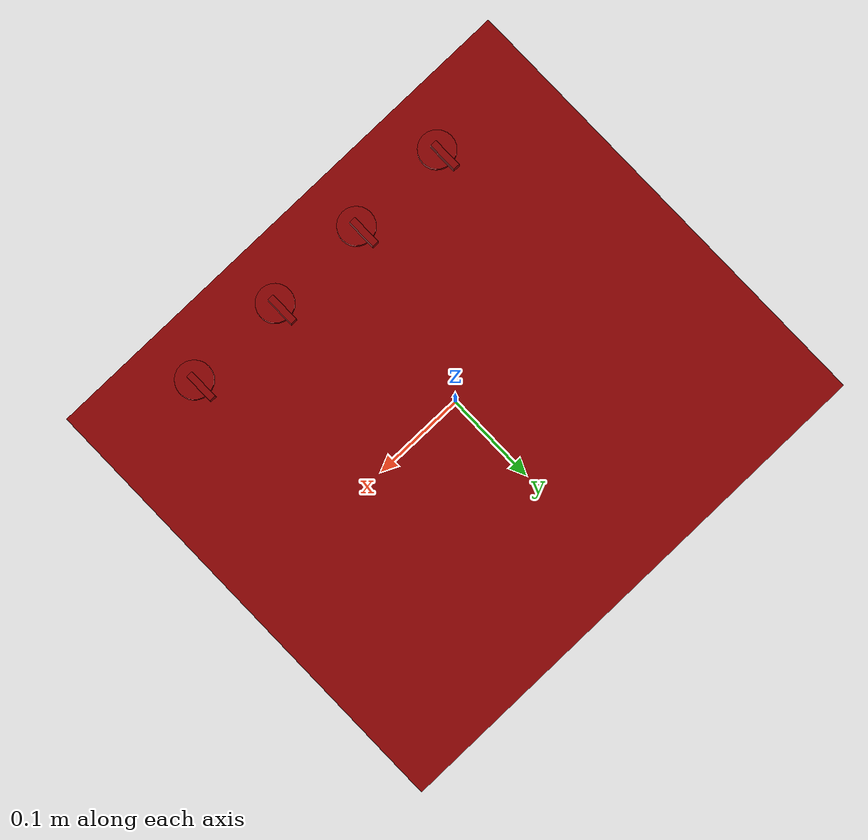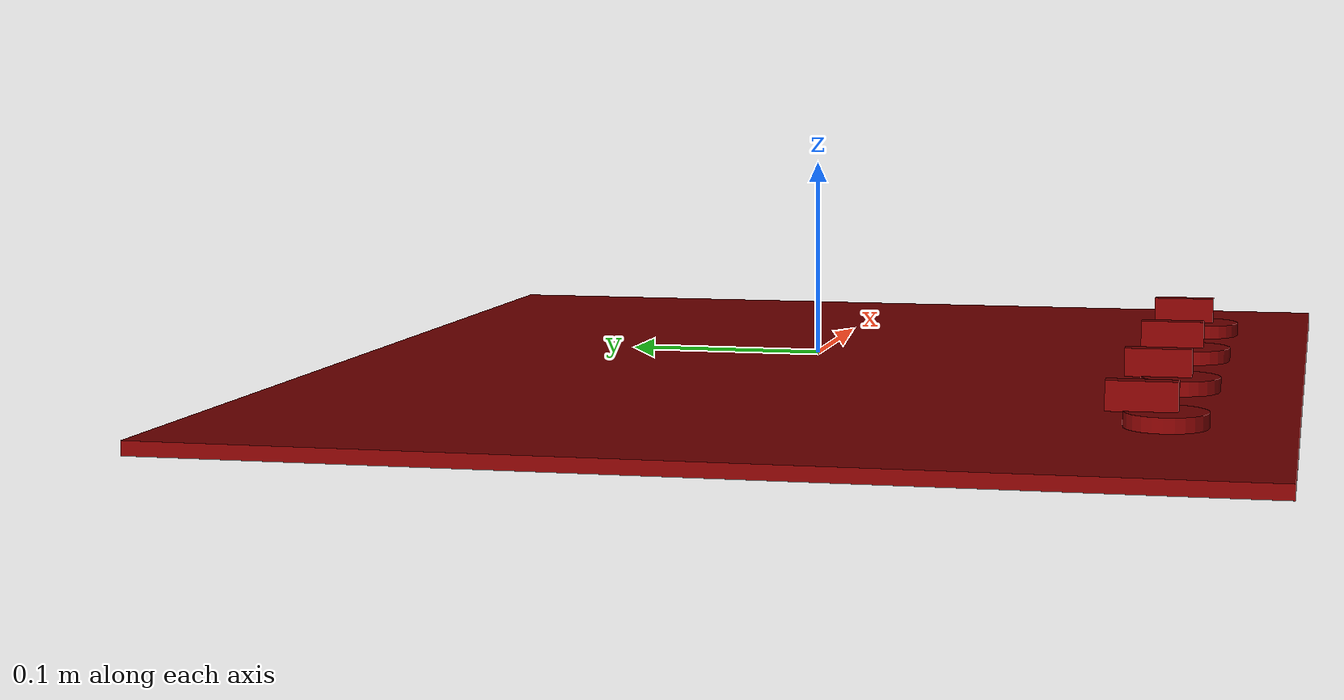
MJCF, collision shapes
<?xml version='1.0' encoding='UTF-8'?>
<mujoco model="model">
  <option timestep="0.002" gravity="0.0 0.0 -9.81"/>
  <compiler angle="radian"/>
  <asset>
    <mesh file="visuals/knob_front_left.obj" name="knob_front_left_vis"/>
    <mesh file="visuals/knob_front_right.obj" name="knob_front_right_vis"/>
    <mesh file="visuals/knob_rear_left.obj" name="knob_rear_left_vis"/>
    <mesh file="visuals/knob_rear_right.obj" name="knob_rear_right_vis"/>
    <mesh file="visuals/Body001.obj" name="Body001_vis"/>
    <texture file="visuals/T_BC001.png" name="Body001_material" type="2d"/>
    <material name="Body001_material" rgba="1 1 1 1.0" texture="Body001_material" shininess="0.4472135901451111" specular="3"/>
    <texture file="visuals/T_BC001.png" name="knob_front_left_material" type="2d"/>
    <material name="knob_front_left_material" rgba="1 1 1 1.0" texture="knob_front_left_material" shininess="0.4472135901451111" specular="0.3103448502657381"/>
    <texture file="visuals/T_BC001.png" name="knob_front_right_material" type="2d"/>
    <material name="knob_front_right_material" rgba="1 1 1 1.0" texture="knob_front_right_material" shininess="0.4472135901451111" specular="0.3103448502657381"/>
    <texture file="visuals/T_BC001.png" name="knob_rear_left_material" type="2d"/>
    <material name="knob_rear_left_material" rgba="1 1 1 1.0" texture="knob_rear_left_material" shininess="0.4472135901451111" specular="0.3103448502657381"/>
    <texture file="visuals/T_BC001.png" name="knob_rear_right_material" type="2d"/>
    <material name="knob_rear_right_material" rgba="1 1 1 1.0" texture="knob_rear_right_material" shininess="0.4472135901451111" specular="0.3103448502657381"/>
  </asset>
  <default>
    <default class="visual">
      <geom conaffinity="0" contype="0" group="1" type="mesh"/>
    </default>
    <default class="collision">
      <geom group="0" rgba="0.5 0 0 0.5"/>
    </default>
    <default class="spawn">
      <geom group="0" rgba="1 1 1 0.5" contype="0" conaffinity="0"/>
      <site group="0" rgba="1 1 1 0.5"/>
    </default>
    <default class="region">
      <geom group="1" conaffinity="0" contype="0" rgba="0 1 0 0"/>
    </default>
  </default>
  <worldbody>
    <body>
      <body name="object">
        <geom mesh="Body001_vis" type="mesh" solimp="0.998 0.998 0.001" solref="0.001 1" friction="0.95 0.3 0.1" class="visual" material="Body001_material"/>
        <geom class="collision" type="box" pos="1.713446273754471e-08 3.3162180557155807e-07 -0.010577866807579994" size="0.287504643201828 0.25250571966171265 0.0034389428328722715" quat="1.0 0.0 0.0 0.0"/>
        <body name="knob_front_left">
          <joint axis="0.0 0.0 1.0" pos="-0.16024501621723175 -0.1932367980480194 -0.00043057650327682495" limited="true" name="knob_front_left_joint" range="0.0 3.141592653589793" type="hinge" damping="0.2" armature="0.01" frictionloss="1"/>
          <geom mesh="knob_front_left_vis" type="mesh" solimp="0.998 0.998 0.001" solref="0.001 1" friction="0.95 0.3 0.1" class="visual" material="knob_front_left_material"/>
          <geom class="collision" type="cylinder" pos="-0.16010397672653198 -0.19313779473304749 -0.0034862475004047155" size="0.01970604807138443 0.003617193317040801" quat="1.0 0.0 0.0 0.0" friction="100 0.5 0.01"/>
          <geom class="collision" type="box" pos="-0.1603866070508957 -0.1821918785572052 0.006927906535565853" size="0.0037172806914895773 0.016593603417277336 0.007052939850836992" quat="1.0 0.0 0.0 0.0" name="knob_front_left_main" friction="100 0.5 0.01"/>
        </body>
        <body name="knob_front_right">
          <joint axis="0.0 0.0 1.0" pos="0.17018404603004456 -0.1932367980480194 -0.00043057650327682495" limited="true" name="knob_front_right_joint" range="0.0 3.141592653589793" type="hinge" damping="0.2" armature="0.01" frictionloss="1"/>
          <geom mesh="knob_front_right_vis" type="mesh" solimp="0.998 0.998 0.001" solref="0.001 1" friction="0.95 0.3 0.1" class="visual" material="knob_front_right_material"/>
          <geom class="collision" type="cylinder" pos="0.17007064819335938 -0.19313779473304749 -0.0034862475004047155" size="0.019706055521965027 0.0036171970423310995" quat="1.0 0.0 0.0 0.0" friction="100 0.5 0.01"/>
          <geom class="collision" type="box" pos="0.16978801786899567 -0.1821918785572052 0.006927906535565853" size="0.0037172853481024504 0.016593603417277336 0.007052939850836992" quat="1.0 0.0 0.0 0.0" name="knob_front_right_main" friction="100 0.5 0.01"/>
        </body>
        <body name="knob_rear_left">
          <joint axis="0.0 0.0 1.0" pos="-0.04999475181102753 -0.1932367980480194 -0.00043057650327682495" limited="true" name="knob_rear_left_joint" range="0.0 3.141592653589793" type="hinge" damping="0.2" armature="0.01" frictionloss="1"/>
          <geom mesh="knob_rear_left_vis" type="mesh" solimp="0.998 0.998 0.001" solref="0.001 1" friction="0.95 0.3 0.1" class="visual" material="knob_rear_left_material"/>
          <geom class="collision" type="cylinder" pos="-0.0499558299779892 -0.19313779473304749 -0.0034862475004047155" size="0.01970604993402958 0.0036171944811940193" quat="1.0 0.0 0.0 0.0" friction="100 0.5 0.01"/>
          <geom class="collision" type="box" pos="-0.050238460302352905 -0.1821918785572052 0.006927906535565853" size="0.003717282321304083 0.016593603417277336 0.007052939850836992" quat="1.0 0.0 0.0 0.0" name="knob_rear_left_main" friction="100 0.5 0.01"/>
        </body>
        <body name="knob_rear_right">
          <joint axis="0.0 0.0 1.0" pos="0.059856534004211426 -0.1932367980480194 -0.00043057650327682495" limited="true" name="knob_rear_right_joint" range="0.0 3.141592653589793" type="hinge" damping="0.2" armature="0.01" frictionloss="1"/>
          <geom mesh="knob_rear_right_vis" type="mesh" solimp="0.998 0.998 0.001" solref="0.001 1" friction="0.95 0.3 0.1" class="visual" material="knob_rear_right_material"/>
          <geom class="collision" type="cylinder" pos="0.06070679426193237 -0.19313779473304749 -0.0034862475004047155" size="0.01970605179667473 0.0036171958781778812" quat="1.0 0.0 0.0 0.0" friction="100 0.5 0.01"/>
          <geom class="collision" type="box" pos="0.060424163937568665 -0.1821918785572052 0.006927906535565853" size="0.0037172839511185884 0.016593603417277336 0.007052939850836992" quat="1.0 0.0 0.0 0.0" name="knob_rear_right_main" friction="100 0.5 0.01"/>
        </body>
        <site type="cylinder" rgba="0.5 0 0 0.5" size="0.06508219242095947 0.0001" pos="0.15531879663467407 -0.0474163256585598 -0.0072863744571805" name="burner_on_front_right"/>
        <site type="cylinder" rgba="0.5 0 0 0.5" size="0.08035153895616531 0.0001" pos="-0.13493065536022186 -0.032167136669158936 -0.007246728520840406" name="burner_on_front_left"/>
        <site type="cylinder" rgba="0.5 0 0 0.5" size="0.06495702266693115 0.0001" pos="-0.13465985655784607 0.14223612844944 -0.007244838867336512" name="burner_on_rear_left"/>
        <site type="cylinder" rgba="0.5 0 0 0.5" size="0.08250290155410767 0.0001" pos="0.1538200080394745 0.12708225846290588 -0.007383259478956461" name="burner_on_rear_right"/>
        <site name="burner_front_right_place_site" type="cylinder" rgba="0.5 0 0 0" size="0.06508219242095947 5.0000002374872565e-05" pos="0.15531879663467407 -0.0474163256585598 -0.0072863744571805"/>
        <site name="burner_front_left_place_site" type="cylinder" rgba="0.5 0 0 0" size="0.08035153895616531 4.999999509891495e-05" pos="-0.13493065536022186 -0.032167136669158936 -0.007246728520840406"/>
        <site name="burner_rear_left_place_site" type="cylinder" rgba="0.5 0 0 0" size="0.06495702266693115 4.999999873689376e-05" pos="-0.13465985655784607 0.14223612844944 -0.007244838867336512"/>
        <site name="burner_rear_right_place_site" type="cylinder" rgba="0.5 0 0 0" size="0.08250290155410767 4.999999873689376e-05" pos="0.1538200080394745 0.12708225846290588 -0.007383259478956461"/>
        <geom class="region" name="reg_main" type="box" pos="-7.450580596923828e-09 2.962297074304843e-11 -0.010602488182485104" size="0.288505179643631 0.2535060474872589 0.004438930492848158"/>
      </body>
    </body>
  </worldbody>
  <actuator>
    <motor name="knob_front_left_joint_actuator" joint="knob_front_left_joint" gear="10"/>
    <motor name="knob_front_right_joint_actuator" joint="knob_front_right_joint" gear="10"/>
    <motor name="knob_rear_left_joint_actuator" joint="knob_rear_left_joint" gear="10"/>
    <motor name="knob_rear_right_joint_actuator" joint="knob_rear_right_joint" gear="10"/>
  </actuator>
</mujoco>
